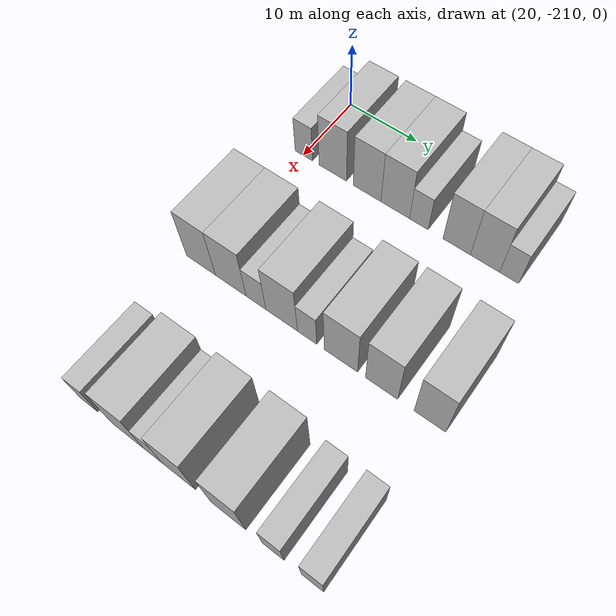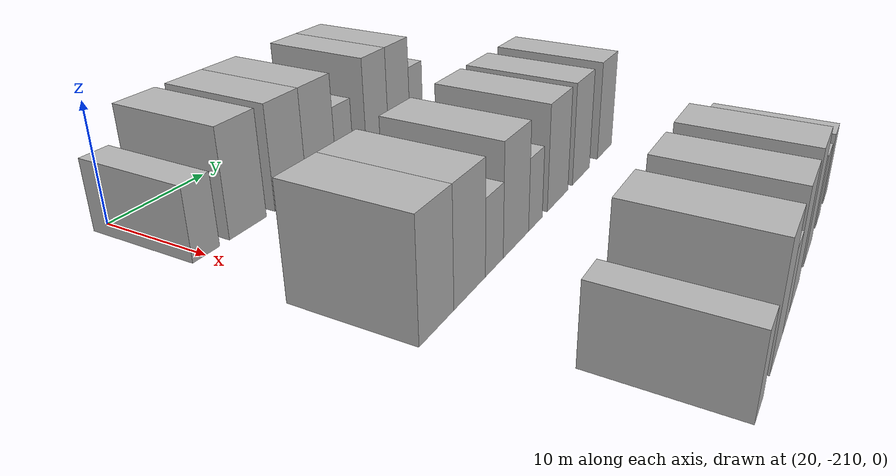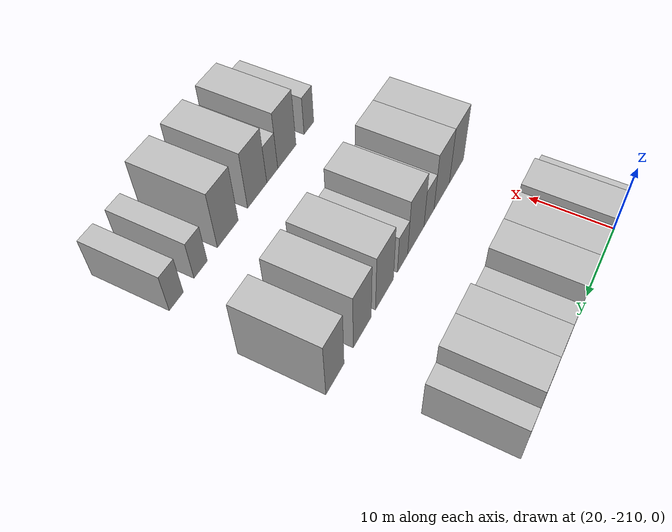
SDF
<sdf version="1.6">
 <world name="default">
  <model name="building_9">
   <static>1</static>
   <pose>25.0000 -209.9251 0 0.000000 0.000000 0.000000</pose>
   <link name="link">
    <pose>0 0 3.00 0 0 0</pose>
    <collision name="collision"><geometry><box><size>10.0000 2.6602 6.0000</size></box></geometry></collision>
    <visual name="visual">
     <cast_shadows>0</cast_shadows>
     <geometry><box><size>10.0000 2.6602 6.0000</size></box></geometry>
     <material>
      <script>
       <uri>model://HANNAS_wall/materials/scripts</uri>
       <uri>model://HANNAS_wall/materials/textures</uri>
       <name>vrc/HANNAS_wall</name>
      </script>
     </material>
    </visual>
   </link>
  </model>
  <model name="building_10">
   <static>1</static>
   <pose>25.0000 -205.5535 0 0.000000 0.000000 0.000000</pose>
   <link name="link">
    <pose>0 0 4.50 0 0 0</pose>
    <collision name="collision"><geometry><box><size>10.0000 4.0828 9.0000</size></box></geometry></collision>
    <visual name="visual">
     <cast_shadows>0</cast_shadows>
     <geometry><box><size>10.0000 4.0828 9.0000</size></box></geometry>
     <material>
      <script>
       <uri>model://HANNAS_wall/materials/scripts</uri>
       <uri>model://HANNAS_wall/materials/textures</uri>
       <name>vrc/HANNAS_wall</name>
      </script>
     </material>
    </visual>
   </link>
  </model>
  <model name="building_11">
   <static>1</static>
   <pose>25.0000 -200.5111 0 0.000000 0.000000 0.000000</pose>
   <link name="link">
    <pose>0 0 4.50 0 0 0</pose>
    <collision name="collision"><geometry><box><size>10.0000 4.0020 9.0000</size></box></geometry></collision>
    <visual name="visual">
     <cast_shadows>0</cast_shadows>
     <geometry><box><size>10.0000 4.0020 9.0000</size></box></geometry>
     <material>
      <script>
       <uri>model://HANNAS_wall/materials/scripts</uri>
       <uri>model://HANNAS_wall/materials/textures</uri>
       <name>vrc/HANNAS_wall</name>
      </script>
     </material>
    </visual>
   </link>
  </model>
  <model name="building_12">
   <static>1</static>
   <pose>25.0000 -196.4841 0 0.000000 0.000000 0.000000</pose>
   <link name="link">
    <pose>0 0 4.50 0 0 0</pose>
    <collision name="collision"><geometry><box><size>10.0000 4.0521 9.0000</size></box></geometry></collision>
    <visual name="visual">
     <cast_shadows>0</cast_shadows>
     <geometry><box><size>10.0000 4.0521 9.0000</size></box></geometry>
     <material>
      <script>
       <uri>model://HANNAS_wall/materials/scripts</uri>
       <uri>model://HANNAS_wall/materials/textures</uri>
       <name>vrc/HANNAS_wall</name>
      </script>
     </material>
    </visual>
   </link>
  </model>
  <model name="building_13">
   <static>1</static>
   <pose>25.0000 -193.1769 0 0.000000 0.000000 0.000000</pose>
   <link name="link">
    <pose>0 0 3.00 0 0 0</pose>
    <collision name="collision"><geometry><box><size>10.0000 2.5623 6.0000</size></box></geometry></collision>
    <visual name="visual">
     <cast_shadows>0</cast_shadows>
     <geometry><box><size>10.0000 2.5623 6.0000</size></box></geometry>
     <material>
      <script>
       <uri>model://HANNAS_wall/materials/scripts</uri>
       <uri>model://HANNAS_wall/materials/textures</uri>
       <name>vrc/HANNAS_wall</name>
      </script>
     </material>
    </visual>
   </link>
  </model>
  <model name="building_14">
   <static>1</static>
   <pose>25.0000 -188.0685 0 0.000000 0.000000 0.000000</pose>
   <link name="link">
    <pose>0 0 4.50 0 0 0</pose>
    <collision name="collision"><geometry><box><size>10.0000 3.6544 9.0000</size></box></geometry></collision>
    <visual name="visual">
     <cast_shadows>0</cast_shadows>
     <geometry><box><size>10.0000 3.6544 9.0000</size></box></geometry>
     <material>
      <script>
       <uri>model://HANNAS_wall/materials/scripts</uri>
       <uri>model://HANNAS_wall/materials/textures</uri>
       <name>vrc/HANNAS_wall</name>
      </script>
     </material>
    </visual>
   </link>
  </model>
  <model name="building_15">
   <static>1</static>
   <pose>25.0000 -184.3394 0 0.000000 0.000000 0.000000</pose>
   <link name="link">
    <pose>0 0 4.50 0 0 0</pose>
    <collision name="collision"><geometry><box><size>10.0000 3.8039 9.0000</size></box></geometry></collision>
    <visual name="visual">
     <cast_shadows>0</cast_shadows>
     <geometry><box><size>10.0000 3.8039 9.0000</size></box></geometry>
     <material>
      <script>
       <uri>model://HANNAS_wall/materials/scripts</uri>
       <uri>model://HANNAS_wall/materials/textures</uri>
       <name>vrc/HANNAS_wall</name>
      </script>
     </material>
    </visual>
   </link>
  </model>
  <model name="building_16">
   <static>1</static>
   <pose>25.0000 -181.2196 0 0.000000 0.000000 0.000000</pose>
   <link name="link">
    <pose>0 0 3.00 0 0 0</pose>
    <collision name="collision"><geometry><box><size>10.0000 2.4358 6.0000</size></box></geometry></collision>
    <visual name="visual">
     <cast_shadows>0</cast_shadows>
     <geometry><box><size>10.0000 2.4358 6.0000</size></box></geometry>
     <material>
      <script>
       <uri>model://HANNAS_wall/materials/scripts</uri>
       <uri>model://HANNAS_wall/materials/textures</uri>
       <name>vrc/HANNAS_wall</name>
      </script>
     </material>
    </visual>
   </link>
  </model>
  <model name="building_129">
   <static>1</static>
   <pose>44.0000 -209.9330 0 0.000000 0.000000 0.000000</pose>
   <link name="link">
    <pose>0 0 4.50 0 0 0</pose>
    <collision name="collision"><geometry><box><size>10.0000 4.2837 9.0000</size></box></geometry></collision>
    <visual name="visual">
     <cast_shadows>0</cast_shadows>
     <geometry><box><size>10.0000 4.2837 9.0000</size></box></geometry>
     <material>
      <script>
       <uri>model://HANNAS_wall/materials/scripts</uri>
       <uri>model://HANNAS_wall/materials/textures</uri>
       <name>vrc/HANNAS_wall</name>
      </script>
     </material>
    </visual>
   </link>
  </model>
  <model name="building_130">
   <static>1</static>
   <pose>44.0000 -205.5796 0 0.000000 0.000000 0.000000</pose>
   <link name="link">
    <pose>0 0 4.50 0 0 0</pose>
    <collision name="collision"><geometry><box><size>10.0000 4.4232 9.0000</size></box></geometry></collision>
    <visual name="visual">
     <cast_shadows>0</cast_shadows>
     <geometry><box><size>10.0000 4.4232 9.0000</size></box></geometry>
     <material>
      <script>
       <uri>model://HANNAS_wall/materials/scripts</uri>
       <uri>model://HANNAS_wall/materials/textures</uri>
       <name>vrc/HANNAS_wall</name>
      </script>
     </material>
    </visual>
   </link>
  </model>
  <model name="building_131">
   <static>1</static>
   <pose>44.0000 -201.9860 0 0.000000 0.000000 0.000000</pose>
   <link name="link">
    <pose>0 0 3.00 0 0 0</pose>
    <collision name="collision"><geometry><box><size>10.0000 2.7641 6.0000</size></box></geometry></collision>
    <visual name="visual">
     <cast_shadows>0</cast_shadows>
     <geometry><box><size>10.0000 2.7641 6.0000</size></box></geometry>
     <material>
      <script>
       <uri>model://HANNAS_wall/materials/scripts</uri>
       <uri>model://HANNAS_wall/materials/textures</uri>
       <name>vrc/HANNAS_wall</name>
      </script>
     </material>
    </visual>
   </link>
  </model>
  <model name="building_132">
   <static>1</static>
   <pose>44.0000 -198.4338 0 0.000000 0.000000 0.000000</pose>
   <link name="link">
    <pose>0 0 4.50 0 0 0</pose>
    <collision name="collision"><geometry><box><size>10.0000 4.3402 9.0000</size></box></geometry></collision>
    <visual name="visual">
     <cast_shadows>0</cast_shadows>
     <geometry><box><size>10.0000 4.3402 9.0000</size></box></geometry>
     <material>
      <script>
       <uri>model://HANNAS_wall/materials/scripts</uri>
       <uri>model://HANNAS_wall/materials/textures</uri>
       <name>vrc/HANNAS_wall</name>
      </script>
     </material>
    </visual>
   </link>
  </model>
  <model name="building_133">
   <static>1</static>
   <pose>44.0000 -194.9786 0 0.000000 0.000000 0.000000</pose>
   <link name="link">
    <pose>0 0 3.00 0 0 0</pose>
    <collision name="collision"><geometry><box><size>10.0000 2.5704 6.0000</size></box></geometry></collision>
    <visual name="visual">
     <cast_shadows>0</cast_shadows>
     <geometry><box><size>10.0000 2.5704 6.0000</size></box></geometry>
     <material>
      <script>
       <uri>model://HANNAS_wall/materials/scripts</uri>
       <uri>model://HANNAS_wall/materials/textures</uri>
       <name>vrc/HANNAS_wall</name>
      </script>
     </material>
    </visual>
   </link>
  </model>
  <model name="building_134">
   <static>1</static>
   <pose>44.0000 -190.5430 0 0.000000 0.000000 0.000000</pose>
   <link name="link">
    <pose>0 0 4.50 0 0 0</pose>
    <collision name="collision"><geometry><box><size>10.0000 4.3008 9.0000</size></box></geometry></collision>
    <visual name="visual">
     <cast_shadows>0</cast_shadows>
     <geometry><box><size>10.0000 4.3008 9.0000</size></box></geometry>
     <material>
      <script>
       <uri>model://HANNAS_wall/materials/scripts</uri>
       <uri>model://HANNAS_wall/materials/textures</uri>
       <name>vrc/HANNAS_wall</name>
      </script>
     </material>
    </visual>
   </link>
  </model>
  <model name="building_135">
   <static>1</static>
   <pose>44.0000 -185.3837 0 0.000000 0.000000 0.000000</pose>
   <link name="link">
    <pose>0 0 4.50 0 0 0</pose>
    <collision name="collision"><geometry><box><size>10.0000 4.0177 9.0000</size></box></geometry></collision>
    <visual name="visual">
     <cast_shadows>0</cast_shadows>
     <geometry><box><size>10.0000 4.0177 9.0000</size></box></geometry>
     <material>
      <script>
       <uri>model://HANNAS_wall/materials/scripts</uri>
       <uri>model://HANNAS_wall/materials/textures</uri>
       <name>vrc/HANNAS_wall</name>
      </script>
     </material>
    </visual>
   </link>
  </model>
  <model name="building_136">
   <static>1</static>
   <pose>44.0000 -179.4810 0 0.000000 0.000000 0.000000</pose>
   <link name="link">
    <pose>0 0 4.50 0 0 0</pose>
    <collision name="collision"><geometry><box><size>10.0000 3.7879 9.0000</size></box></geometry></collision>
    <visual name="visual">
     <cast_shadows>0</cast_shadows>
     <geometry><box><size>10.0000 3.7879 9.0000</size></box></geometry>
     <material>
      <script>
       <uri>model://HANNAS_wall/materials/scripts</uri>
       <uri>model://HANNAS_wall/materials/textures</uri>
       <name>vrc/HANNAS_wall</name>
      </script>
     </material>
    </visual>
   </link>
  </model>
  <model name="building_249">
   <static>1</static>
   <pose>63.0000 -208.3455 0 0.000000 0.000000 0.000000</pose>
   <link name="link">
    <pose>0 0 3.00 0 0 0</pose>
    <collision name="collision"><geometry><box><size>10.0000 2.4346 6.0000</size></box></geometry></collision>
    <visual name="visual">
     <cast_shadows>0</cast_shadows>
     <geometry><box><size>10.0000 2.4346 6.0000</size></box></geometry>
     <material>
      <script>
       <uri>model://HANNAS_wall/materials/scripts</uri>
       <uri>model://HANNAS_wall/materials/textures</uri>
       <name>vrc/HANNAS_wall</name>
      </script>
     </material>
    </visual>
   </link>
  </model>
  <model name="building_250">
   <static>1</static>
   <pose>63.0000 -202.9553 0 0.000000 0.000000 0.000000</pose>
   <link name="link">
    <pose>0 0 4.50 0 0 0</pose>
    <collision name="collision"><geometry><box><size>10.0000 4.3457 9.0000</size></box></geometry></collision>
    <visual name="visual">
     <cast_shadows>0</cast_shadows>
     <geometry><box><size>10.0000 4.3457 9.0000</size></box></geometry>
     <material>
      <script>
       <uri>model://HANNAS_wall/materials/scripts</uri>
       <uri>model://HANNAS_wall/materials/textures</uri>
       <name>vrc/HANNAS_wall</name>
      </script>
     </material>
    </visual>
   </link>
  </model>
  <model name="building_251">
   <static>1</static>
   <pose>63.0000 -199.5242 0 0.000000 0.000000 0.000000</pose>
   <link name="link">
    <pose>0 0 3.00 0 0 0</pose>
    <collision name="collision"><geometry><box><size>10.0000 2.5165 6.0000</size></box></geometry></collision>
    <visual name="visual">
     <cast_shadows>0</cast_shadows>
     <geometry><box><size>10.0000 2.5165 6.0000</size></box></geometry>
     <material>
      <script>
       <uri>model://HANNAS_wall/materials/scripts</uri>
       <uri>model://HANNAS_wall/materials/textures</uri>
       <name>vrc/HANNAS_wall</name>
      </script>
     </material>
    </visual>
   </link>
  </model>
  <model name="building_252">
   <static>1</static>
   <pose>63.0000 -196.1442 0 0.000000 0.000000 0.000000</pose>
   <link name="link">
    <pose>0 0 4.50 0 0 0</pose>
    <collision name="collision"><geometry><box><size>10.0000 4.2436 9.0000</size></box></geometry></collision>
    <visual name="visual">
     <cast_shadows>0</cast_shadows>
     <geometry><box><size>10.0000 4.2436 9.0000</size></box></geometry>
     <material>
      <script>
       <uri>model://HANNAS_wall/materials/scripts</uri>
       <uri>model://HANNAS_wall/materials/textures</uri>
       <name>vrc/HANNAS_wall</name>
      </script>
     </material>
    </visual>
   </link>
  </model>
  <model name="building_253">
   <static>1</static>
   <pose>63.0000 -189.8887 0 0.000000 0.000000 0.000000</pose>
   <link name="link">
    <pose>0 0 4.50 0 0 0</pose>
    <collision name="collision"><geometry><box><size>10.0000 4.2675 9.0000</size></box></geometry></collision>
    <visual name="visual">
     <cast_shadows>0</cast_shadows>
     <geometry><box><size>10.0000 4.2675 9.0000</size></box></geometry>
     <material>
      <script>
       <uri>model://HANNAS_wall/materials/scripts</uri>
       <uri>model://HANNAS_wall/materials/textures</uri>
       <name>vrc/HANNAS_wall</name>
      </script>
     </material>
    </visual>
   </link>
  </model>
  <model name="building_254">
   <static>1</static>
   <pose>63.0000 -184.4761 0 0.000000 0.000000 0.000000</pose>
   <link name="link">
    <pose>0 0 3.00 0 0 0</pose>
    <collision name="collision"><geometry><box><size>10.0000 2.5576 6.0000</size></box></geometry></collision>
    <visual name="visual">
     <cast_shadows>0</cast_shadows>
     <geometry><box><size>10.0000 2.5576 6.0000</size></box></geometry>
     <material>
      <script>
       <uri>model://HANNAS_wall/materials/scripts</uri>
       <uri>model://HANNAS_wall/materials/textures</uri>
       <name>vrc/HANNAS_wall</name>
      </script>
     </material>
    </visual>
   </link>
  </model>
  <model name="building_255">
   <static>1</static>
   <pose>63.0000 -179.9211 0 0.000000 0.000000 0.000000</pose>
   <link name="link">
    <pose>0 0 3.00 0 0 0</pose>
    <collision name="collision"><geometry><box><size>10.0000 2.5523 6.0000</size></box></geometry></collision>
    <visual name="visual">
     <cast_shadows>0</cast_shadows>
     <geometry><box><size>10.0000 2.5523 6.0000</size></box></geometry>
     <material>
      <script>
       <uri>model://HANNAS_wall/materials/scripts</uri>
       <uri>model://HANNAS_wall/materials/textures</uri>
       <name>vrc/HANNAS_wall</name>
      </script>
     </material>
    </visual>
   </link>
  </model>
 </world>
</sdf>
